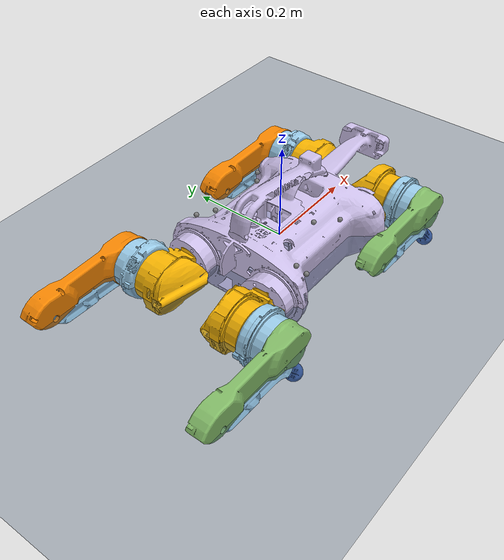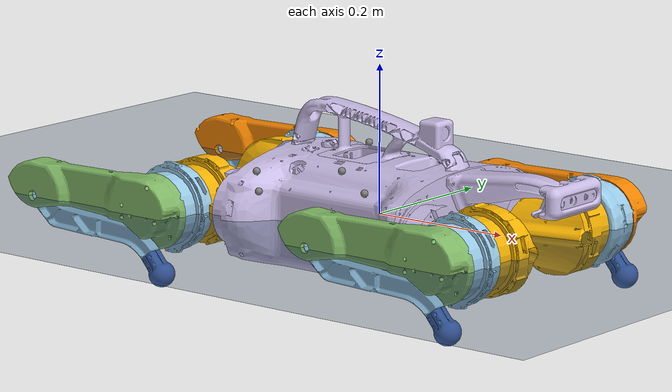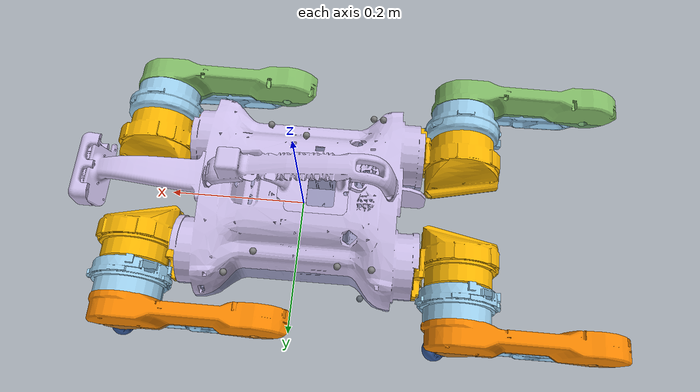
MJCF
<mujoco model="barkour vB scene">
  <compiler angle="radian"/>

  <option iterations="1" ls_iterations="5">
    <flag eulerdamp="disable"/>
  </option>

  <size nkey="1"/>

  <visual>
    <global azimuth="120" elevation="-20"/>
    <headlight ambient="0.3 0.3 0.3" diffuse="0.6 0.6 0.6" specular="0 0 0"/>
    <rgba haze="0.15 0.25 0.35 1"/>
  </visual>

  <statistic extent="0.8" center="0 0 0.1"/>

  <default>
    <default class="bkvb">
      <joint armature="0.011" damping="0.024"/>
      <geom type="mesh" contype="0" conaffinity="0"/>
      <site group="5"/>
      <general forcerange="-18 18" biastype="affine" gainprm="50" biasprm="0 -50 -0.5"/>
      <default class="bkvb/collision">
        <geom conaffinity="1" group="3"/>
        <default class="bkvb/collision/foot">
          <geom size="0.0175 0 0" type="sphere" friction="0.8 0.02 0.01" solimp="0.015 1 0.031" rgba="1 0 0 1"/>
        </default>
      </default>
      <default class="bkvb/vicon">
        <site group="0"/>
      </default>
      <default class="bkvb/abduction">
        <joint range="-1.0472 1.0472"/>
        <geom rgba="0.980392 0.713726 0.00392157 1" mesh="abduction"/>
        <general ctrlrange="-0.9472 0.9472"/>
      </default>
      <default class="bkvb/hip">
        <joint range="-1.54706 3.02902"/>
        <general ctrlrange="-1.44706 2.92902"/>
      </default>
      <default class="bkvb/knee">
        <joint range="0 2.44346"/>
        <general ctrlrange="0.1 2.34346"/>
      </default>
      <default class="bkvb/foot">
        <geom rgba="0.231373 0.380392 0.705882 1" mesh="foot"/>
      </default>
      <default class="bkvb/lower_leg">
        <geom rgba="0.615686 0.811765 0.929412 1" mesh="lower_leg"/>
      </default>
      <default class="bkvb/upper_leg">
        <geom rgba="0.615686 0.811765 0.929412 1" mesh="upper_leg"/>
      </default>
      <default class="bkvb/upper_leg_left">
        <geom rgba="0.972549 0.529412 0.00392157 1" mesh="upper_leg_left"/>
      </default>
      <default class="bkvb/upper_leg_right">
        <geom rgba="0.513726 0.737255 0.407843 1" mesh="upper_leg_right"/>
      </default>
      <default class="bkvb/torso">
        <geom rgba="0.8 0.74902 0.913725 1"/>
      </default>
    </default>
  </default>

  <asset>
    <texture type="skybox" colorspace="auto" builtin="gradient" rgb1="0.3 0.5 0.7" rgb2="0 0 0" width="512" height="3072"/>
    <texture type="2d" colorspace="auto" name="groundplane" builtin="checker" mark="edge" rgb1="0.2 0.3 0.4" rgb2="0.1 0.2 0.3" markrgb="0.8 0.8 0.8" width="300" height="300"/>
    <material name="groundplane" texture="groundplane" texuniform="true" texrepeat="5 5" reflectance="0.2"/>
    <mesh name="camera_cover" content_type="model/stl" file="assets/camera_cover.stl"/>
    <mesh name="neck" content_type="model/stl" file="assets/neck.stl"/>
    <mesh name="intel_realsense_depth_camera_d435" content_type="model/stl" file="assets/intel_realsense_depth_camera_d435.stl"/>
    <mesh name="handle" content_type="model/stl" file="assets/handle.stl"/>
    <mesh name="torso" content_type="model/stl" file="assets/torso.stl"/>
    <mesh name="abduction" content_type="model/stl" file="assets/abduction.stl"/>
    <mesh name="upper_leg" content_type="model/stl" file="assets/upper_leg.stl"/>
    <mesh name="upper_leg_left" content_type="model/stl" file="assets/upper_leg_left.stl"/>
    <mesh name="upper_leg_right" content_type="model/stl" file="assets/upper_leg_right.stl"/>
    <mesh name="lower_leg" content_type="model/stl" file="assets/lower_leg.stl"/>
    <mesh name="foot" content_type="model/stl" file="assets/foot.stl"/>
  </asset>

  <worldbody>
    <geom name="floor" size="0 0 0.05" type="plane" material="groundplane"/>
    <camera name="default" pos="0.846 -1.465 0.916" quat="0.791164 0.554139 0.148485 0.211997"/>
    <light pos="0 0 1.5" dir="0 0 -1" type="directional"/>
    <body name="torso" childclass="bkvb">
      <inertial pos="0.0055238 -0.000354563 0.00835899" quat="-0.00150849 0.694899 -0.000198355 0.719106" mass="6.04352" diaginertia="0.144664 0.12027 0.0511405"/>
      <joint name="torso" type="free" armature="0" damping="0"/>
      <geom class="bkvb/torso" pos="-7.85127e-05 -0.000500734 0" quat="1 0 0 0" mesh="neck"/>
      <geom class="bkvb/torso" pos="-7.85127e-05 -0.000500734 0" quat="1 0 0 0" mesh="camera_cover"/>
      <geom class="bkvb/torso" pos="-7.85127e-05 -0.000500734 0" quat="1 0 0 0" mesh="handle"/>
      <geom class="bkvb/torso" pos="0.319921 -0.000500734 0.0651248" quat="0.707107 0 0 0.707107" mesh="intel_realsense_depth_camera_d435"/>
      <geom class="bkvb/torso" pos="-7.85127e-05 -0.000500734 0" quat="1 0 0 0" mesh="torso"/>
      <site name="imu_frame" pos="0.010715 -0.00025 -0.06" quat="0 0 0 1"/>
      <site name="base_frame" pos="0 0 0"/>
      <site name="vicon_frame" pos="0 0 0"/>
      <site name="vicon_0" class="bkvb/vicon" pos="-0.110864 -0.117663 0.061736"/>
      <site name="vicon_1" class="bkvb/vicon" pos="-0.110864 0.116662 0.0617363" quat="0.965087 -0.209027 0.154269 -0.0334129"/>
      <site name="vicon_2" class="bkvb/vicon" pos="-0.0625744 0.11068 0.0458139" quat="0.900548 -0.434757 0 0"/>
      <site name="vicon_3" class="bkvb/vicon" pos="0.0561715 0.100042 0.0527394" quat="0.98926 -0.146166 0 0"/>
      <site name="vicon_4" class="bkvb/vicon" pos="0.0960704 0.129697 0.0389732" quat="0.767626 -0.517423 -0.313596 0.211381"/>
      <site name="vicon_5" class="bkvb/vicon" pos="-0.0962327 0.13163 -0.0388594" quat="0.529619 -0.759572 0.215948 -0.309709"/>
      <site name="vicon_6" class="bkvb/vicon" pos="-7.85127e-05 -0.0778626 0.070357" quat="0.94293 0.33299 0 0"/>
      <site name="vicon_8" class="bkvb/vicon" pos="-0.0962274 -0.130699 0.0389732" quat="0.767626 0.517423 0.313596 0.211381"/>
      <site name="vicon_9" class="bkvb/vicon" pos="0.0561715 -0.101043 0.0527394" quat="0.98926 0.146166 0 0"/>
      <camera name="track" pos="1.958 -2.348 0.591" quat="0.715508 0.609846 0.22106 0.259361" mode="trackcom"/>
      <body pos="0.3176 0.017 0.065" quat="0.5 -0.5 0.5 -0.5">
        <site name="head_camera_frame" pos="0 0 0"/>
        <site name="realsense/depth_frame" pos="0 0 0" quat="0 1 0 0"/>
        <site name="realsense/rgb_frame" pos="0 0.015 0" quat="0 1 0 0"/>
        <site name="realsense/imu" pos="0 0 0"/>
        <camera name="realsense/depth" pos="0 0 0" quat="0 1 0 0" fovy="62"/>
        <camera name="realsense/rgb" pos="0 0.015 0" quat="0 1 0 0" fovy="42.5"/>
      </body>
      <body name="oak/" pos="0.08632 0 0.1213" quat="0.5 -0.5 0.5 -0.5">
        <site name="handle_camera_frame" pos="0 0 0"/>
        <camera name="oak/rgb" pos="0 0 0.0125" quat="0 -1 0 0" resolution="96 60" sensorsize="0.000288 0.00018" focalpixel="66.5557 66.5356" principalpixel="-1.14467 -1.86643"/>
      </body>
      <body name="leg_front_left" pos="0.171671 0.0892493 -9.8e-06" quat="0.5 -0.5 -0.5 0.5">
        <inertial pos="0.00547726 -0.000288034 -0.0602191" quat="0.999837 0.0103892 -0.0143715 -0.00325656" mass="0.787" diaginertia="0.00143831 0.00117023 0.00100011"/>
        <joint name="abduction_front_left" class="bkvb/abduction" pos="0 0 0" axis="0 0 1"/>
        <geom class="bkvb/abduction" pos="0 0.000111373 0.0029" quat="0.707107 0.707107 0 0" mesh="abduction"/>
        <body name="upper_leg_front_left" pos="0.03085 0 -0.065" quat="0 -0.707107 0 0.707107">
          <inertial pos="-0.0241397 0.00402429 -0.0453038" quat="0.0673193 0.647966 -0.00518142 0.75867" mass="1.155" diaginertia="0.00562022 0.00519471 0.0012633"/>
          <joint name="hip_front_left" class="bkvb/hip" pos="0 0 0" axis="0 0 1"/>
          <geom class="bkvb/upper_leg" pos="0.0679 0.000111373 0.03085" quat="0.5 0.5 0.5 -0.5" mesh="upper_leg"/>
          <geom class="bkvb/upper_leg_left" pos="0 0 -0.05075" quat="0 0 1 0" mesh="upper_leg_left"/>
          <body name="lower_leg_front_left" pos="-0.19 0 -0.069575" quat="0 0 1 0">
            <inertial pos="-0.0895493 -0.0301957 -3.02082e-08" quat="-0.101465 0.699789 0.101465 0.699789" mass="0.171238" diaginertia="0.00137406 0.00135746 3.05521e-05"/>
            <joint name="knee_front_left" class="bkvb/knee" pos="0 0 0" axis="0 0 1"/>
            <geom class="bkvb/foot" pos="-0.0649838 0.178542 0" quat="0.819152 0 0 -0.573576" mesh="foot"/>
            <geom class="bkvb/lower_leg" pos="-0.0649838 0.178542 0" quat="0.819152 0 0 -0.573576" mesh="lower_leg"/>
            <geom name="foot_front_left" class="bkvb/collision/foot" pos="-0.21425 -0.0779806 0"/>
            <site name="foot_front_left" class="bkvb/foot" pos="-0.21425 -0.0779806 0" quat="0.664463 0.664463 -0.241845 -0.241845"/>
          </body>
        </body>
      </body>
      <body name="leg_hind_left" pos="-0.171829 0.0892493 -9.8e-06" quat="0.5 -0.5 -0.5 0.5">
        <inertial pos="0.00547726 0.000288034 0.0602191" quat="0.999837 0.0103892 0.0143715 0.00325656" mass="0.787" diaginertia="0.00143831 0.00117023 0.00100011"/>
        <joint name="abduction_hind_left" class="bkvb/abduction" pos="0 0 0" axis="0 0 1"/>
        <geom class="bkvb/abduction" pos="0 -0.000111373 -0.0029" quat="0.707107 -0.707107 0 0" mesh="abduction"/>
        <body name="upper_leg_hind_left" pos="0.03085 0 0.065" quat="0 0.707107 0 -0.707107">
          <inertial pos="-0.0241397 0.00402429 -0.0453038" quat="0.0673193 0.647966 -0.00518142 0.75867" mass="1.155" diaginertia="0.00562022 0.00519471 0.0012633"/>
          <joint name="hip_hind_left" class="bkvb/hip" pos="0 0 0" axis="0 0 1"/>
          <geom class="bkvb/upper_leg" pos="0.0679 0.000111373 0.03085" quat="0.5 0.5 0.5 -0.5" mesh="upper_leg"/>
          <geom class="bkvb/upper_leg_left" pos="0 0 -0.05075" quat="0 0 1 0" mesh="upper_leg_left"/>
          <body name="lower_leg_hind_left" pos="-0.19 0 -0.069925" quat="0 0 1 0">
            <inertial pos="-0.0895493 -0.0301957 -3.02082e-08" quat="-0.101465 0.699789 0.101465 0.699789" mass="0.171238" diaginertia="0.00137406 0.00135746 3.05521e-05"/>
            <joint name="knee_hind_left" class="bkvb/knee" pos="0 0 0" axis="0 0 1"/>
            <geom class="bkvb/lower_leg" pos="-0.0649838 0.178542 0" quat="0.819152 0 0 -0.573576" mesh="lower_leg"/>
            <geom class="bkvb/foot" pos="-0.0649838 0.178542 0" quat="0.819152 0 0 -0.573576" mesh="foot"/>
            <geom name="foot_hind_left" class="bkvb/collision/foot" pos="-0.21425 -0.0779806 0"/>
            <site name="foot_hind_left" class="bkvb/foot" pos="-0.21425 -0.0779806 0" quat="0.664463 0.664463 -0.241845 -0.241845"/>
          </body>
        </body>
      </body>
      <body name="leg_front_right" pos="0.171671 -0.0907507 -9.8e-06" quat="0.5 -0.5 0.5 -0.5">
        <inertial pos="0.00547726 0.000288034 0.0602191" quat="0.999837 0.0103892 0.0143715 0.00325656" mass="0.787" diaginertia="0.00143831 0.00117023 0.00100011"/>
        <joint name="abduction_front_right" class="bkvb/abduction" pos="0 0 0" axis="0 0 1"/>
        <geom class="bkvb/abduction" pos="0 -0.000111373 -0.0029" quat="0.707107 -0.707107 0 0" mesh="abduction"/>
        <body name="upper_leg_front_right" pos="0.03085 0 0.065" quat="0 -0.707107 0 -0.707107">
          <inertial pos="-0.0241393 0.00324567 0.0453036" quat="-0.00604983 0.756969 -0.0854547 0.64781" mass="1.155" diaginertia="0.00563107 0.00519539 0.00126472"/>
          <joint name="hip_front_right" class="bkvb/hip" pos="0 0 0" axis="0 0 1"/>
          <geom class="bkvb/upper_leg" pos="0.0679 -0.000111373 -0.03085" quat="0.5 -0.5 -0.5 -0.5" mesh="upper_leg"/>
          <geom class="bkvb/upper_leg_right" pos="0 0 0.05075" quat="0 0 -1 0" mesh="upper_leg_right"/>
          <body name="lower_leg_front_right" pos="-0.19 0 0.069575" quat="0 0 -1 0">
            <inertial pos="-0.0895493 -0.0301957 -3.02082e-08" quat="-0.101465 0.699789 0.101465 0.699789" mass="0.171238" diaginertia="0.00137406 0.00135746 3.05521e-05"/>
            <joint name="knee_front_right" class="bkvb/knee" pos="0 0 0" axis="0 0 1"/>
            <geom class="bkvb/foot" pos="-0.0649838 0.178542 0" quat="0.819152 0 0 -0.573576" mesh="foot"/>
            <geom class="bkvb/lower_leg" pos="-0.0649838 0.178542 0" quat="0.819152 0 0 -0.573576" mesh="lower_leg"/>
            <geom name="foot_front_right" class="bkvb/collision/foot" pos="-0.21425 -0.0779806 0"/>
            <site name="foot_front_right" class="bkvb/foot" pos="-0.21425 -0.0779806 0" quat="0.664463 0.664463 -0.241845 -0.241845"/>
          </body>
        </body>
      </body>
      <body name="leg_hind_right" pos="-0.171829 -0.0907507 -9.8e-06" quat="0.5 -0.5 0.5 -0.5">
        <inertial pos="0.00547726 -0.000288034 -0.0600191" quat="0.999837 0.0103892 -0.0143715 -0.00325656" mass="0.787" diaginertia="0.00143831 0.00117023 0.00100011"/>
        <joint name="abduction_hind_right" class="bkvb/abduction" pos="0 0 0" axis="0 0 1"/>
        <geom class="bkvb/abduction" pos="0 0.000111373 0.0031" quat="0.707107 0.707107 0 0" mesh="abduction"/>
        <body name="upper_leg_hind_right" pos="0.03085 0 -0.0648" quat="0 0.707107 0 0.707107">
          <inertial pos="-0.0241393 0.00324567 0.0453036" quat="-0.00604983 0.756969 -0.0854547 0.64781" mass="1.155" diaginertia="0.00563107 0.00519539 0.00126472"/>
          <joint name="hip_hind_right" class="bkvb/hip" pos="0 0 0" axis="0 0 1"/>
          <geom class="bkvb/upper_leg" pos="0.0679 -0.000111373 -0.03085" quat="0.5 -0.5 -0.5 -0.5" mesh="upper_leg"/>
          <geom class="bkvb/upper_leg_right" pos="0 0 0.05075" quat="0 0 -1 0" mesh="upper_leg_right"/>
          <body name="lower_leg_hind_right" pos="-0.19 0 0.069575" quat="0 0 -1 0">
            <inertial pos="-0.0895493 -0.0301957 -3.02082e-08" quat="-0.101465 0.699789 0.101465 0.699789" mass="0.171238" diaginertia="0.00137406 0.00135746 3.05521e-05"/>
            <joint name="knee_hind_right" class="bkvb/knee" pos="0 0 0" axis="0 0 1"/>
            <geom class="bkvb/lower_leg" pos="-0.0649838 0.178542 0" quat="0.819152 0 0 -0.573576" mesh="lower_leg"/>
            <geom class="bkvb/foot" pos="-0.0649838 0.178542 0" quat="0.819152 0 0 -0.573576" mesh="foot"/>
            <geom name="foot_hind_right" class="bkvb/collision/foot" pos="-0.21425 -0.0779806 0"/>
            <site name="foot_hind_right" class="bkvb/foot" pos="-0.21425 -0.0779806 0" quat="0.664463 0.664463 -0.241845 -0.241845"/>
          </body>
        </body>
      </body>
    </body>
  </worldbody>

  <actuator>
    <general name="abduction_front_left" class="bkvb/abduction" joint="abduction_front_left"/>
    <general name="hip_front_left" class="bkvb/hip" joint="hip_front_left"/>
    <general name="knee_front_left" class="bkvb/knee" joint="knee_front_left"/>
    <general name="abduction_hind_left" class="bkvb/abduction" joint="abduction_hind_left"/>
    <general name="hip_hind_left" class="bkvb/hip" joint="hip_hind_left"/>
    <general name="knee_hind_left" class="bkvb/knee" joint="knee_hind_left"/>
    <general name="abduction_front_right" class="bkvb/abduction" joint="abduction_front_right"/>
    <general name="hip_front_right" class="bkvb/hip" joint="hip_front_right"/>
    <general name="knee_front_right" class="bkvb/knee" joint="knee_front_right"/>
    <general name="abduction_hind_right" class="bkvb/abduction" joint="abduction_hind_right"/>
    <general name="hip_hind_right" class="bkvb/hip" joint="hip_hind_right"/>
    <general name="knee_hind_right" class="bkvb/knee" joint="knee_hind_right"/>
  </actuator>

  <sensor>
    <jointpos joint="abduction_front_left" name="abduction_front_left_pos"/>
    <jointpos joint="hip_front_left" name="hip_front_left_pos"/>
    <jointpos joint="knee_front_left" name="knee_front_left_pos"/>
    <jointpos joint="abduction_hind_left" name="abduction_hind_left_pos"/>
    <jointpos joint="hip_hind_left" name="hip_hind_left_pos"/>
    <jointpos joint="knee_hind_left" name="knee_hind_left_pos"/>
    <jointpos joint="abduction_front_right" name="abduction_front_right_pos"/>
    <jointpos joint="hip_front_right" name="hip_front_right_pos"/>
    <jointpos joint="knee_front_right" name="knee_front_right_pos"/>
    <jointpos joint="abduction_hind_right" name="abduction_hind_right_pos"/>
    <jointpos joint="hip_hind_right" name="hip_hind_right_pos"/>
    <jointpos joint="knee_hind_right" name="knee_hind_right_pos"/>
    <jointvel joint="abduction_front_left" name="abduction_front_left_vel"/>
    <jointvel joint="hip_front_left" name="hip_front_left_vel"/>
    <jointvel joint="knee_front_left" name="knee_front_left_vel"/>
    <jointvel joint="abduction_hind_left" name="abduction_hind_left_vel"/>
    <jointvel joint="hip_hind_left" name="hip_hind_left_vel"/>
    <jointvel joint="knee_hind_left" name="knee_hind_left_vel"/>
    <jointvel joint="abduction_front_right" name="abduction_front_right_vel"/>
    <jointvel joint="hip_front_right" name="hip_front_right_vel"/>
    <jointvel joint="knee_front_right" name="knee_front_right_vel"/>
    <jointvel joint="abduction_hind_right" name="abduction_hind_right_vel"/>
    <jointvel joint="hip_hind_right" name="hip_hind_right_vel"/>
    <jointvel joint="knee_hind_right" name="knee_hind_right_vel"/>
    <gyro site="imu_frame" name="gyro"/>
    <velocimeter site="imu_frame" name="local_linvel"/>
    <accelerometer site="imu_frame" name="accelerometer"/>
    <framepos objtype="site" objname="imu_frame" name="global_position"/>
    <framezaxis objtype="site" objname="imu_frame" name="upvector"/>
    <framelinvel objtype="site" objname="imu_frame" name="global_linvel"/>
    <frameangvel objtype="site" objname="imu_frame" name="global_angvel"/>
    <framequat objtype="site" objname="imu_frame" name="orientation"/>
    <contact geom1="foot_front_left" geom2="floor" reduce="mindist" name="foot_front_left_floor_found"/>
    <contact geom1="foot_hind_left" geom2="floor" reduce="mindist" name="foot_hind_left_floor_found"/>
    <contact geom1="foot_front_right" geom2="floor" reduce="mindist" name="foot_front_right_floor_found"/>
    <contact geom1="foot_hind_right" geom2="floor" reduce="mindist" name="foot_hind_right_floor_found"/>
  </sensor>

  <keyframe>
    <key name="home" qpos="0 0 0.28 1 0 0 0 0 0.5 1 0 0.5 1 0 0.5 1 0 0.5 1" ctrl="0 0.5 1 0 0.5 1 0 0.5 1 0 0.5 1"/>
  </keyframe>
</mujoco>
